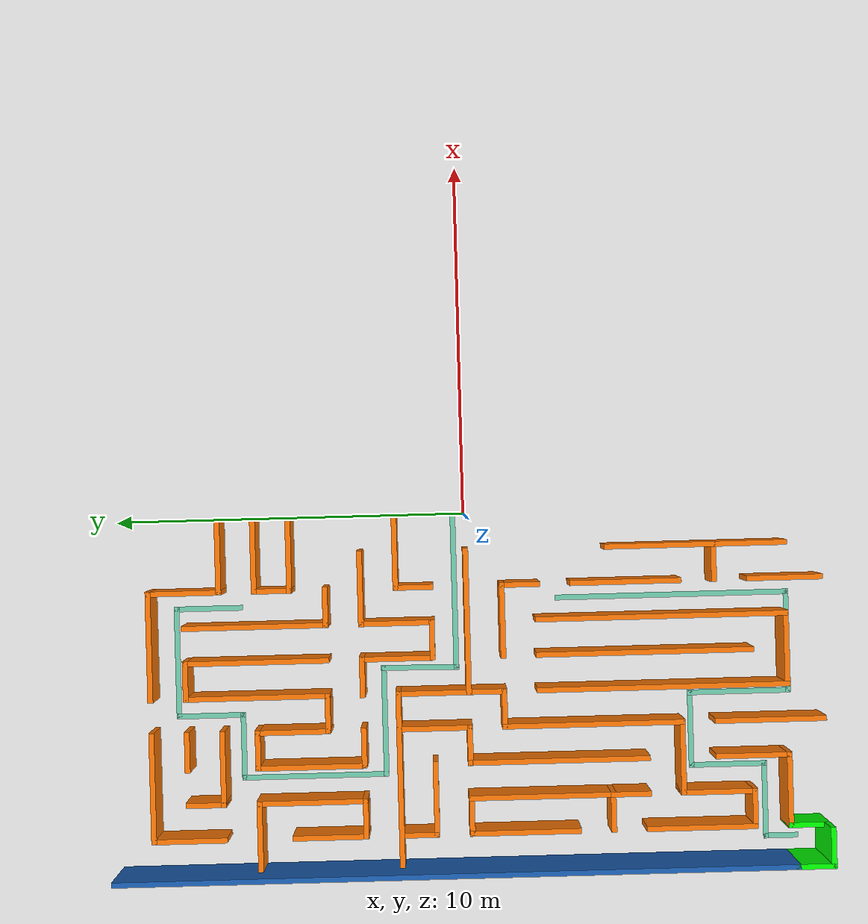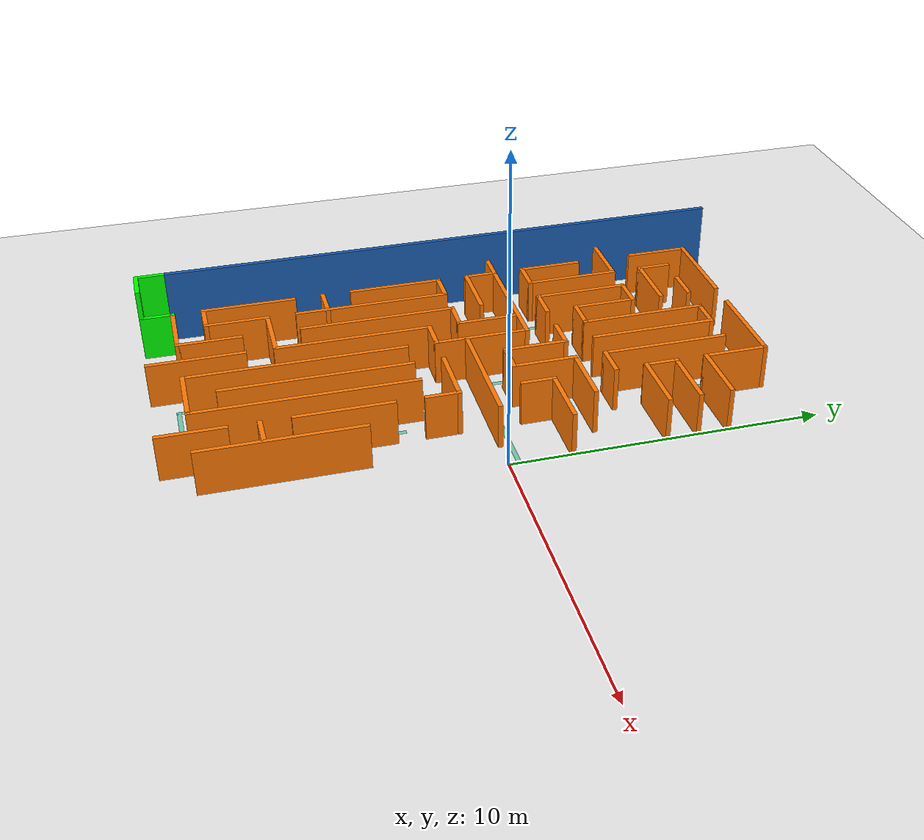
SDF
<sdf version="1.7">
 <world name="default">
  <model name="ground_plane">
   <static>1</static>
   <link name="link">
    <collision name="collision">
     <geometry><plane><normal>0 0 1</normal><size>100 100</size></plane></geometry>
     <surface><friction><ode><mu>100</mu><mu2>50</mu2></ode></friction></surface>
    </collision>
    <visual name="visual">
     <cast_shadows>0</cast_shadows>
     <geometry><plane><normal>0 0 1</normal><size>100 100</size></plane></geometry>
     <material>
      <script><uri>file://media/materials/scripts/gazebo.material</uri><name>Gazebo/White</name></script>
     </material>
    </visual>
   </link>
  </model>
  <model name="big_maze">
   <link name="Wall_10">
    <collision name="Wall_10_Collision">
     <geometry><box><size>19.15 0.15 2.5</size></box></geometry>
     <pose>0 0 1.25 0 -0 0</pose>
    </collision>
    <visual name="Wall_10_Visual">
     <pose>0 0 1.25 0 -0 0</pose>
     <geometry><box><size>19.15 0.15 2.5</size></box></geometry>
     <material>
      <script><uri>file://media/materials/scripts/gazebo.material</uri><name>Gazebo/Grey</name></script>
      <ambient>0.101961 0.372549 0.705882 1</ambient>
     </material>
     <meta><layer>0</layer></meta>
    </visual>
    <pose>-10 0.5 0 0 -0 1.5708</pose>
   </link>
   <link name="Wall_16">
    <collision name="Wall_16_Collision">
     <geometry><box><size>1.15 0.15 1.5</size></box></geometry>
     <pose>0 0 0.75 0 -0 0</pose>
    </collision>
    <visual name="Wall_16_Visual">
     <pose>0 0 0.75 0 -0 0</pose>
     <geometry><box><size>1.15 0.15 1.5</size></box></geometry>
     <material>
      <script><uri>file://media/materials/scripts/gazebo.material</uri><name>Gazebo/Grey</name></script>
      <ambient>0 1 0 1</ambient>
     </material>
     <meta><layer>0</layer></meta>
    </visual>
    <pose>-9 -9.5 0 0 -0 1.5708</pose>
   </link>
   <link name="Wall_166">
    <collision name="Wall_166_Collision">
     <geometry><box><size>3.15 0.15 1.5</size></box></geometry>
     <pose>0 0 0.75 0 -0 0</pose>
    </collision>
    <visual name="Wall_166_Visual">
     <pose>0 0 0.75 0 -0 0</pose>
     <geometry><box><size>3.15 0.15 1.5</size></box></geometry>
     <material>
      <script><uri>file://media/materials/scripts/gazebo.material</uri><name>Gazebo/Grey</name></script>
      <ambient>0.996078 0.47451 0.0196078 1</ambient>
     </material>
     <meta><layer>0</layer></meta>
    </visual>
    <pose>-7.5 9 0 0 -0 0</pose>
   </link>
   <link name="Wall_168">
    <collision name="Wall_168_Collision">
     <geometry><box><size>3.15 0.15 1.5</size></box></geometry>
     <pose>0 0 0.75 0 -0 0</pose>
    </collision>
    <visual name="Wall_168_Visual">
     <pose>0 0 0.75 0 -0 0</pose>
     <geometry><box><size>3.15 0.15 1.5</size></box></geometry>
     <material>
      <script><uri>file://media/materials/scripts/gazebo.material</uri><name>Gazebo/Grey</name></script>
      <ambient>0.996078 0.47451 0.0196078 1</ambient>
     </material>
     <meta><layer>0</layer></meta>
    </visual>
    <pose>-3.5 9 0 0 -0 0</pose>
   </link>
   <link name="Wall_176">
    <collision name="Wall_176_Collision">
     <geometry><box><size>1.15 0.15 1.5</size></box></geometry>
     <pose>0 0 0.75 0 -0 0</pose>
    </collision>
    <visual name="Wall_176_Visual">
     <pose>0 0 0.75 0 -0 0</pose>
     <geometry><box><size>1.15 0.15 1.5</size></box></geometry>
     <material>
      <script><uri>file://media/materials/scripts/gazebo.material</uri><name>Gazebo/Grey</name></script>
      <ambient>0.996078 0.47451 0.0196078 1</ambient>
     </material>
     <meta><layer>0</layer></meta>
    </visual>
    <pose>-6.5 8 0 0 -0 0</pose>
   </link>
   <link name="Wall_18">
    <collision name="Wall_18_Collision">
     <geometry><box><size>3.15 0.15 1.5</size></box></geometry>
     <pose>0 0 0.75 0 -0 0</pose>
    </collision>
    <visual name="Wall_18_Visual">
     <pose>0 0 0.75 0 -0 0</pose>
     <geometry><box><size>3.15 0.15 1.5</size></box></geometry>
     <material>
      <script><uri>file://media/materials/scripts/gazebo.material</uri><name>Gazebo/Grey</name></script>
      <ambient>0.996078 0.47451 0.0196078 1</ambient>
     </material>
     <meta><layer>0</layer></meta>
    </visual>
    <pose>-9 -6.5 0 0 -0 1.5708</pose>
   </link>
   <link name="Wall_182">
    <collision name="Wall_182_Collision">
     <geometry><box><size>1.15 0.15 1.5</size></box></geometry>
     <pose>0 0 0.75 0 -0 0</pose>
    </collision>
    <visual name="Wall_182_Visual">
     <pose>0 0 0.75 0 -0 0</pose>
     <geometry><box><size>1.15 0.15 1.5</size></box></geometry>
     <material>
      <script><uri>file://media/materials/scripts/gazebo.material</uri><name>Gazebo/Grey</name></script>
      <ambient>0.996078 0.47451 0.0196078 1</ambient>
     </material>
     <meta><layer>0</layer></meta>
    </visual>
    <pose>-4.5 8 0 0 -0 0</pose>
   </link>
   <link name="Wall_186">
    <collision name="Wall_186_Collision">
     <geometry><box><size>2.15 0.15 1.5</size></box></geometry>
     <pose>0 0 0.75 0 -0 0</pose>
    </collision>
    <visual name="Wall_186_Visual">
     <pose>0 0 0.75 0 -0 0</pose>
     <geometry><box><size>2.15 0.15 1.5</size></box></geometry>
     <material>
      <script><uri>file://media/materials/scripts/gazebo.material</uri><name>Gazebo/Grey</name></script>
      <ambient>0.996078 0.47451 0.0196078 1</ambient>
     </material>
     <meta><layer>0</layer></meta>
    </visual>
    <pose>-1 7 0 0 -0 0</pose>
   </link>
   <link name="Wall_190">
    <collision name="Wall_190_Collision">
     <geometry><box><size>2.15 0.15 1.5</size></box></geometry>
     <pose>0 0 0.75 0 -0 0</pose>
    </collision>
    <visual name="Wall_190_Visual">
     <pose>0 0 0.75 0 -0 0</pose>
     <geometry><box><size>2.15 0.15 1.5</size></box></geometry>
     <material>
      <script><uri>file://media/materials/scripts/gazebo.material</uri><name>Gazebo/Grey</name></script>
      <ambient>0.996078 0.47451 0.0196078 1</ambient>
     </material>
     <meta><layer>0</layer></meta>
    </visual>
    <pose>-7 7 0 0 -0 0</pose>
   </link>
   <link name="Wall_192">
    <collision name="Wall_192_Collision">
     <geometry><box><size>2.15 0.15 1.5</size></box></geometry>
     <pose>0 0 0.75 0 -0 0</pose>
    </collision>
    <visual name="Wall_192_Visual">
     <pose>0 0 0.75 0 -0 0</pose>
     <geometry><box><size>2.15 0.15 1.5</size></box></geometry>
     <material>
      <script><uri>file://media/materials/scripts/gazebo.material</uri><name>Gazebo/Grey</name></script>
      <ambient>0.996078 0.47451 0.0196078 1</ambient>
     </material>
     <meta><layer>0</layer></meta>
    </visual>
    <pose>-9 6 0 0 -0 0</pose>
   </link>
   <link name="Wall_196">
    <collision name="Wall_196_Collision">
     <geometry><box><size>2.15 0.15 1.5</size></box></geometry>
     <pose>0 0 0.75 0 -0 0</pose>
    </collision>
    <visual name="Wall_196_Visual">
     <pose>0 0 0.75 0 -0 0</pose>
     <geometry><box><size>2.15 0.15 1.5</size></box></geometry>
     <material>
      <script><uri>file://media/materials/scripts/gazebo.material</uri><name>Gazebo/Grey</name></script>
      <ambient>0.996078 0.47451 0.0196078 1</ambient>
     </material>
     <meta><layer>0</layer></meta>
    </visual>
    <pose>-1 6 0 0 -0 0</pose>
   </link>
   <link name="Wall_198">
    <collision name="Wall_198_Collision">
     <geometry><box><size>1.15 0.15 1.5</size></box></geometry>
     <pose>0 0 0.75 0 -0 0</pose>
    </collision>
    <visual name="Wall_198_Visual">
     <pose>0 0 0.75 0 -0 0</pose>
     <geometry><box><size>1.15 0.15 1.5</size></box></geometry>
     <material>
      <script><uri>file://media/materials/scripts/gazebo.material</uri><name>Gazebo/Grey</name></script>
      <ambient>0.996078 0.47451 0.0196078 1</ambient>
     </material>
     <meta><layer>0</layer></meta>
    </visual>
    <pose>-6.5 6 0 0 -0 0</pose>
   </link>
   <link name="Wall_20">
    <collision name="Wall_20_Collision">
     <geometry><box><size>3.15 0.15 1.5</size></box></geometry>
     <pose>0 0 0.75 0 -0 0</pose>
    </collision>
    <visual name="Wall_20_Visual">
     <pose>0 0 0.75 0 -0 0</pose>
     <geometry><box><size>3.15 0.15 1.5</size></box></geometry>
     <material>
      <script><uri>file://media/materials/scripts/gazebo.material</uri><name>Gazebo/Grey</name></script>
      <ambient>0.996078 0.47451 0.0196078 1</ambient>
     </material>
     <meta><layer>0</layer></meta>
    </visual>
    <pose>-9 -1.5 0 0 -0 1.5708</pose>
   </link>
   <link name="Wall_200">
    <collision name="Wall_200_Collision">
     <geometry><box><size>2.15 0.15 1.5</size></box></geometry>
     <pose>0 0 0.75 0 -0 0</pose>
    </collision>
    <visual name="Wall_200_Visual">
     <pose>0 0 0.75 0 -0 0</pose>
     <geometry><box><size>2.15 0.15 1.5</size></box></geometry>
     <material>
      <script><uri>file://media/materials/scripts/gazebo.material</uri><name>Gazebo/Grey</name></script>
      <ambient>0.996078 0.47451 0.0196078 1</ambient>
     </material>
     <meta><layer>0</layer></meta>
    </visual>
    <pose>-1 5 0 0 -0 0</pose>
   </link>
   <link name="Wall_204">
    <collision name="Wall_204_Collision">
     <geometry><box><size>1.15 0.15 1.5</size></box></geometry>
     <pose>0 0 0.75 0 -0 0</pose>
    </collision>
    <visual name="Wall_204_Visual">
     <pose>0 0 0.75 0 -0 0</pose>
     <geometry><box><size>1.15 0.15 1.5</size></box></geometry>
     <material>
      <script><uri>file://media/materials/scripts/gazebo.material</uri><name>Gazebo/Grey</name></script>
      <ambient>0.996078 0.47451 0.0196078 1</ambient>
     </material>
     <meta><layer>0</layer></meta>
    </visual>
    <pose>-5.5 4 0 0 -0 0</pose>
   </link>
   <link name="Wall_206">
    <collision name="Wall_206_Collision">
     <geometry><box><size>1.15 0.15 1.5</size></box></geometry>
     <pose>0 0 0.75 0 -0 0</pose>
    </collision>
    <visual name="Wall_206_Visual">
     <pose>0 0 0.75 0 -0 0</pose>
     <geometry><box><size>1.15 0.15 1.5</size></box></geometry>
     <material>
      <script><uri>file://media/materials/scripts/gazebo.material</uri><name>Gazebo/Grey</name></script>
      <ambient>0.996078 0.47451 0.0196078 1</ambient>
     </material>
     <meta><layer>0</layer></meta>
    </visual>
    <pose>-2.5 4 0 0 -0 0</pose>
   </link>
   <link name="Wall_210">
    <collision name="Wall_210_Collision">
     <geometry><box><size>1.15 0.15 1.5</size></box></geometry>
     <pose>0 0 0.75 0 -0 0</pose>
    </collision>
    <visual name="Wall_210_Visual">
     <pose>0 0 0.75 0 -0 0</pose>
     <geometry><box><size>1.15 0.15 1.5</size></box></geometry>
     <material>
      <script><uri>file://media/materials/scripts/gazebo.material</uri><name>Gazebo/Grey</name></script>
      <ambient>0.996078 0.47451 0.0196078 1</ambient>
     </material>
     <meta><layer>0</layer></meta>
    </visual>
    <pose>-8.5 3 0 0 -0 0</pose>
   </link>
   <link name="Wall_212">
    <collision name="Wall_212_Collision">
     <geometry><box><size>1.15 0.15 1.5</size></box></geometry>
     <pose>0 0 0.75 0 -0 0</pose>
    </collision>
    <visual name="Wall_212_Visual">
     <pose>0 0 0.75 0 -0 0</pose>
     <geometry><box><size>1.15 0.15 1.5</size></box></geometry>
     <material>
      <script><uri>file://media/materials/scripts/gazebo.material</uri><name>Gazebo/Grey</name></script>
      <ambient>0.996078 0.47451 0.0196078 1</ambient>
     </material>
     <meta><layer>0</layer></meta>
    </visual>
    <pose>-6.5 3 0 0 -0 0</pose>
   </link>
   <link name="Wall_216">
    <collision name="Wall_216_Collision">
     <geometry><box><size>2.15 0.15 1.5</size></box></geometry>
     <pose>0 0 0.75 0 -0 0</pose>
    </collision>
    <visual name="Wall_216_Visual">
     <pose>0 0 0.75 0 -0 0</pose>
     <geometry><box><size>2.15 0.15 1.5</size></box></geometry>
     <material>
      <script><uri>file://media/materials/scripts/gazebo.material</uri><name>Gazebo/Grey</name></script>
      <ambient>0.996078 0.47451 0.0196078 1</ambient>
     </material>
     <meta><layer>0</layer></meta>
    </visual>
    <pose>-2 3 0 0 -0 0</pose>
   </link>
   <link name="Wall_218">
    <collision name="Wall_218_Collision">
     <geometry><box><size>1.15 0.15 1.5</size></box></geometry>
     <pose>0 0 0.75 0 -0 0</pose>
    </collision>
    <visual name="Wall_218_Visual">
     <pose>0 0 0.75 0 -0 0</pose>
     <geometry><box><size>1.15 0.15 1.5</size></box></geometry>
     <material>
      <script><uri>file://media/materials/scripts/gazebo.material</uri><name>Gazebo/Grey</name></script>
      <ambient>0.996078 0.47451 0.0196078 1</ambient>
     </material>
     <meta><layer>0</layer></meta>
    </visual>
    <pose>-4.5 3 0 0 -0 0</pose>
   </link>
   <link name="Wall_22">
    <collision name="Wall_22_Collision">
     <geometry><box><size>1.15 0.15 1.5</size></box></geometry>
     <pose>0 0 0.75 0 -0 0</pose>
    </collision>
    <visual name="Wall_22_Visual">
     <pose>0 0 0.75 0 -0 0</pose>
     <geometry><box><size>1.15 0.15 1.5</size></box></geometry>
     <material>
      <script><uri>file://media/materials/scripts/gazebo.material</uri><name>Gazebo/Grey</name></script>
      <ambient>0.996078 0.47451 0.0196078 1</ambient>
     </material>
     <meta><layer>0</layer></meta>
    </visual>
    <pose>-9 1.5 0 0 -0 1.5708</pose>
   </link>
   <link name="Wall_220">
    <collision name="Wall_220_Collision">
     <geometry><box><size>5.15 0.15 1.5</size></box></geometry>
     <pose>0 0 0.75 0 -0 0</pose>
    </collision>
    <visual name="Wall_220_Visual">
     <pose>0 0 0.75 0 -0 0</pose>
     <geometry><box><size>5.15 0.15 1.5</size></box></geometry>
     <material>
      <script><uri>file://media/materials/scripts/gazebo.material</uri><name>Gazebo/Grey</name></script>
      <ambient>0.996078 0.47451 0.0196078 1</ambient>
     </material>
     <meta><layer>0</layer></meta>
    </visual>
    <pose>-7.5 2 0 0 -0 0</pose>
   </link>
   <link name="Wall_222">
    <collision name="Wall_222_Collision">
     <geometry><box><size>2.15 0.15 1.5</size></box></geometry>
     <pose>0 0 0.75 0 -0 0</pose>
    </collision>
    <visual name="Wall_222_Visual">
     <pose>0 0 0.75 0 -0 0</pose>
     <geometry><box><size>2.15 0.15 1.5</size></box></geometry>
     <material>
      <script><uri>file://media/materials/scripts/gazebo.material</uri><name>Gazebo/Grey</name></script>
      <ambient>0.996078 0.47451 0.0196078 1</ambient>
     </material>
     <meta><layer>0</layer></meta>
    </visual>
    <pose>-1 2 0 0 -0 0</pose>
   </link>
   <link name="Wall_226">
    <collision name="Wall_226_Collision">
     <geometry><box><size>2.15 0.15 1.5</size></box></geometry>
     <pose>0 0 0.75 0 -0 0</pose>
    </collision>
    <visual name="Wall_226_Visual">
     <pose>0 0 0.75 0 -0 0</pose>
     <geometry><box><size>2.15 0.15 1.5</size></box></geometry>
     <material>
      <script><uri>file://media/materials/scripts/gazebo.material</uri><name>Gazebo/Grey</name></script>
      <ambient>0.996078 0.47451 0.0196078 1</ambient>
     </material>
     <meta><layer>0</layer></meta>
    </visual>
    <pose>-8 1 0 0 -0 0</pose>
   </link>
   <link name="Wall_228">
    <collision name="Wall_228_Collision">
     <geometry><box><size>1.15 0.15 1.5</size></box></geometry>
     <pose>0 0 0.75 0 -0 0</pose>
    </collision>
    <visual name="Wall_228_Visual">
     <pose>0 0 0.75 0 -0 0</pose>
     <geometry><box><size>1.15 0.15 1.5</size></box></geometry>
     <material>
      <script><uri>file://media/materials/scripts/gazebo.material</uri><name>Gazebo/Grey</name></script>
      <ambient>0.996078 0.47451 0.0196078 1</ambient>
     </material>
     <meta><layer>0</layer></meta>
    </visual>
    <pose>-3.5 1 0 0 -0 0</pose>
   </link>
   <link name="Wall_234">
    <collision name="Wall_234_Collision">
     <geometry><box><size>1.15 0.15 1.5</size></box></geometry>
     <pose>0 0 0.75 0 -0 0</pose>
    </collision>
    <visual name="Wall_234_Visual">
     <pose>0 0 0.75 0 -0 0</pose>
     <geometry><box><size>1.15 0.15 1.5</size></box></geometry>
     <material>
      <script><uri>file://media/materials/scripts/gazebo.material</uri><name>Gazebo/Grey</name></script>
      <ambient>0.996078 0.47451 0.0196078 1</ambient>
     </material>
     <meta><layer>0</layer></meta>
    </visual>
    <pose>-8.5 0 0 0 -0 0</pose>
   </link>
   <link name="Wall_236">
    <collision name="Wall_236_Collision">
     <geometry><box><size>1.15 0.15 1.5</size></box></geometry>
     <pose>0 0 0.75 0 -0 0</pose>
    </collision>
    <visual name="Wall_236_Visual">
     <pose>0 0 0.75 0 -0 0</pose>
     <geometry><box><size>1.15 0.15 1.5</size></box></geometry>
     <material>
      <script><uri>file://media/materials/scripts/gazebo.material</uri><name>Gazebo/Grey</name></script>
      <ambient>0.996078 0.47451 0.0196078 1</ambient>
     </material>
     <meta><layer>0</layer></meta>
    </visual>
    <pose>-6.5 0 0 0 -0 0</pose>
   </link>
   <link name="Wall_238">
    <collision name="Wall_238_Collision">
     <geometry><box><size>4.15 0.15 1.5</size></box></geometry>
     <pose>0 0 0.75 0 -0 0</pose>
    </collision>
    <visual name="Wall_238_Visual">
     <pose>0 0 0.75 0 -0 0</pose>
     <geometry><box><size>4.15 0.15 1.5</size></box></geometry>
     <material>
      <script><uri>file://media/materials/scripts/gazebo.material</uri><name>Gazebo/Grey</name></script>
      <ambient>0.996078 0.47451 0.0196078 1</ambient>
     </material>
     <meta><layer>0</layer></meta>
    </visual>
    <pose>-3 0 0 0 -0 0</pose>
   </link>
   <link name="Wall_24">
    <collision name="Wall_24_Collision">
     <geometry><box><size>2.15 0.15 1.5</size></box></geometry>
     <pose>0 0 0.75 0 -0 0</pose>
    </collision>
    <visual name="Wall_24_Visual">
     <pose>0 0 0.75 0 -0 0</pose>
     <geometry><box><size>2.15 0.15 1.5</size></box></geometry>
     <material>
      <script><uri>file://media/materials/scripts/gazebo.material</uri><name>Gazebo/Grey</name></script>
      <ambient>0.996078 0.47451 0.0196078 1</ambient>
     </material>
     <meta><layer>0</layer></meta>
    </visual>
    <pose>-9 4 0 0 -0 1.5708</pose>
   </link>
   <link name="Wall_242">
    <collision name="Wall_242_Collision">
     <geometry><box><size>1.15 0.15 1.5</size></box></geometry>
     <pose>0 0 0.75 0 -0 0</pose>
    </collision>
    <visual name="Wall_242_Visual">
     <pose>0 0 0.75 0 -0 0</pose>
     <geometry><box><size>1.15 0.15 1.5</size></box></geometry>
     <material>
      <script><uri>file://media/materials/scripts/gazebo.material</uri><name>Gazebo/Grey</name></script>
      <ambient>0.996078 0.47451 0.0196078 1</ambient>
     </material>
     <meta><layer>0</layer></meta>
    </visual>
    <pose>-5.5 -1 0 0 -0 0</pose>
   </link>
   <link name="Wall_244">
    <collision name="Wall_244_Collision">
     <geometry><box><size>2.15 0.15 1.5</size></box></geometry>
     <pose>0 0 0.75 0 -0 0</pose>
    </collision>
    <visual name="Wall_244_Visual">
     <pose>0 0 0.75 0 -0 0</pose>
     <geometry><box><size>2.15 0.15 1.5</size></box></geometry>
     <material>
      <script><uri>file://media/materials/scripts/gazebo.material</uri><name>Gazebo/Grey</name></script>
      <ambient>0.996078 0.47451 0.0196078 1</ambient>
     </material>
     <meta><layer>0</layer></meta>
    </visual>
    <pose>-3 -1 0 0 -0 0</pose>
   </link>
   <link name="Wall_256">
    <collision name="Wall_256_Collision">
     <geometry><box><size>1.15 0.15 1.5</size></box></geometry>
     <pose>0 0 0.75 0 -0 0</pose>
    </collision>
    <visual name="Wall_256_Visual">
     <pose>0 0 0.75 0 -0 0</pose>
     <geometry><box><size>1.15 0.15 1.5</size></box></geometry>
     <material>
      <script><uri>file://media/materials/scripts/gazebo.material</uri><name>Gazebo/Grey</name></script>
      <ambient>0.996078 0.47451 0.0196078 1</ambient>
     </material>
     <meta><layer>0</layer></meta>
    </visual>
    <pose>-8.5 -4 0 0 -0 0</pose>
   </link>
   <link name="Wall_26">
    <collision name="Wall_26_Collision">
     <geometry><box><size>2.15 0.15 1.5</size></box></geometry>
     <pose>0 0 0.75 0 -0 0</pose>
    </collision>
    <visual name="Wall_26_Visual">
     <pose>0 0 0.75 0 -0 0</pose>
     <geometry><box><size>2.15 0.15 1.5</size></box></geometry>
     <material>
      <script><uri>file://media/materials/scripts/gazebo.material</uri><name>Gazebo/Grey</name></script>
      <ambient>0.996078 0.47451 0.0196078 1</ambient>
     </material>
     <meta><layer>0</layer></meta>
    </visual>
    <pose>-9 8 0 0 -0 1.5708</pose>
   </link>
   <link name="Wall_260">
    <collision name="Wall_260_Collision">
     <geometry><box><size>2.15 0.15 1.5</size></box></geometry>
     <pose>0 0 0.75 0 -0 0</pose>
    </collision>
    <visual name="Wall_260_Visual">
     <pose>0 0 0.75 0 -0 0</pose>
     <geometry><box><size>2.15 0.15 1.5</size></box></geometry>
     <material>
      <script><uri>file://media/materials/scripts/gazebo.material</uri><name>Gazebo/Grey</name></script>
      <ambient>0.996078 0.47451 0.0196078 1</ambient>
     </material>
     <meta><layer>0</layer></meta>
    </visual>
    <pose>-7 -6 0 0 -0 0</pose>
   </link>
   <link name="Wall_265">
    <collision name="Wall_265_Collision">
     <geometry><box><size>1.15 0.15 1.5</size></box></geometry>
     <pose>0 0 0.75 0 -0 0</pose>
    </collision>
    <visual name="Wall_265_Visual">
     <pose>0 0 0.75 0 -0 0</pose>
     <geometry><box><size>1.15 0.15 1.5</size></box></geometry>
     <material>
      <script><uri>file://media/materials/scripts/gazebo.material</uri><name>Gazebo/Grey</name></script>
      <ambient>0.996078 0.47451 0.0196078 1</ambient>
     </material>
     <meta><layer>0</layer></meta>
    </visual>
    <pose>-1.5 -7 0 0 -0 0</pose>
   </link>
   <link name="Wall_267">
    <collision name="Wall_267_Collision">
     <geometry><box><size>1.15 0.15 1.5</size></box></geometry>
     <pose>0 0 0.75 0 -0 0</pose>
    </collision>
    <visual name="Wall_267_Visual">
     <pose>0 0 0.75 0 -0 0</pose>
     <geometry><box><size>1.15 0.15 1.5</size></box></geometry>
     <material>
      <script><uri>file://media/materials/scripts/gazebo.material</uri><name>Gazebo/Grey</name></script>
      <ambient>0.996078 0.47451 0.0196078 1</ambient>
     </material>
     <meta><layer>0</layer></meta>
    </visual>
    <pose>-8.5 -8 0 0 -0 0</pose>
   </link>
   <link name="Wall_271">
    <collision name="Wall_271_Collision">
     <geometry><box><size>2.15 0.15 1.5</size></box></geometry>
     <pose>0 0 0.75 0 -0 0</pose>
    </collision>
    <visual name="Wall_271_Visual">
     <pose>0 0 0.75 0 -0 0</pose>
     <geometry><box><size>2.15 0.15 1.5</size></box></geometry>
     <material>
      <script><uri>file://media/materials/scripts/gazebo.material</uri><name>Gazebo/Grey</name></script>
      <ambient>0.996078 0.47451 0.0196078 1</ambient>
     </material>
     <meta><layer>0</layer></meta>
    </visual>
    <pose>-8 -9 0 0 -0 0</pose>
   </link>
   <link name="Wall_277">
    <collision name="Wall_277_Collision">
     <geometry><box><size>2.15 0.15 1.5</size></box></geometry>
     <pose>0 0 0.75 0 -0 0</pose>
    </collision>
    <visual name="Wall_277_Visual">
     <pose>0 0 0.75 0 -0 0</pose>
     <geometry><box><size>2.15 0.15 1.5</size></box></geometry>
     <material>
      <script><uri>file://media/materials/scripts/gazebo.material</uri><name>Gazebo/Grey</name></script>
      <ambient>0.996078 0.47451 0.0196078 1</ambient>
     </material>
     <meta><layer>0</layer></meta>
    </visual>
    <pose>-4 -9 0 0 -0 0</pose>
   </link>
   <link name="Wall_28">
    <collision name="Wall_28_Collision">
     <geometry><box><size>1.15 0.15 1.5</size></box></geometry>
     <pose>0 0 0.75 0 -0 0</pose>
    </collision>
    <visual name="Wall_28_Visual">
     <pose>0 0 0.75 0 -0 0</pose>
     <geometry><box><size>1.15 0.15 1.5</size></box></geometry>
     <material>
      <script><uri>file://media/materials/scripts/gazebo.material</uri><name>Gazebo/Grey</name></script>
      <ambient>0.996078 0.47451 0.0196078 1</ambient>
     </material>
     <meta><layer>0</layer></meta>
    </visual>
    <pose>-8 7.5 0 0 -0 -1.5708</pose>
   </link>
   <link name="Wall_283">
    <collision name="Wall_283_Collision"><geometry><box><size>4.5002 0.15 0</size></box></geometry></collision>
    <visual name="Wall_283_Visual">
     <geometry><box><size>4.5002 0.15 0</size></box></geometry>
     <material>
      <script><uri>file://media/materials/scripts/gazebo.material</uri><name>Gazebo/Grey</name></script>
      <ambient>0.435294 0.796078 0.67451 1</ambient>
     </material>
     <meta><layer>0</layer></meta>
    </visual>
    <pose>-2.2315 0.326 0 0 -0 3.14159</pose>
   </link>
   <link name="Wall_284">
    <collision name="Wall_284_Collision"><geometry><box><size>2.25 0.15 0</size></box></geometry></collision>
    <visual name="Wall_284_Visual">
     <geometry><box><size>2.25 0.15 0</size></box></geometry>
     <material>
      <script><uri>file://media/materials/scripts/gazebo.material</uri><name>Gazebo/Grey</name></script>
      <ambient>0.435294 0.796078 0.67451 1</ambient>
     </material>
     <meta><layer>0</layer></meta>
    </visual>
    <pose>-4.3915 1.376 0 0 -0 1.55604</pose>
   </link>
   <link name="Wall_288">
    <collision name="Wall_288_Collision"><geometry><box><size>3.2192 0.15 0</size></box></geometry></collision>
    <visual name="Wall_288_Visual">
     <geometry><box><size>3.2192 0.15 0</size></box></geometry>
     <material>
      <script><uri>file://media/materials/scripts/gazebo.material</uri><name>Gazebo/Grey</name></script>
      <ambient>0.435294 0.796078 0.67451 1</ambient>
     </material>
     <meta><layer>0</layer></meta>
    </visual>
    <pose>-5.9105 2.426 0 0 -0 3.14159</pose>
   </link>
   <link name="Wall_289">
    <collision name="Wall_289_Collision"><geometry><box><size>4.25 0.15 0</size></box></geometry></collision>
    <visual name="Wall_289_Visual">
     <geometry><box><size>4.25 0.15 0</size></box></geometry>
     <material>
      <script><uri>file://media/materials/scripts/gazebo.material</uri><name>Gazebo/Grey</name></script>
      <ambient>0.435294 0.796078 0.67451 1</ambient>
     </material>
     <meta><layer>0</layer></meta>
    </visual>
    <pose>-7.445 4.476 0 0 -0 1.5708</pose>
   </link>
   <link name="Wall_290">
    <collision name="Wall_290_Collision"><geometry><box><size>1.969 0.15 0</size></box></geometry></collision>
    <visual name="Wall_290_Visual">
     <geometry><box><size>1.969 0.15 0</size></box></geometry>
     <material>
      <script><uri>file://media/materials/scripts/gazebo.material</uri><name>Gazebo/Grey</name></script>
      <ambient>0.435294 0.796078 0.67451 1</ambient>
     </material>
     <meta><layer>0</layer></meta>
    </visual>
    <pose>-6.5355 6.526 0 0 -0 0</pose>
   </link>
   <link name="Wall_294">
    <collision name="Wall_294_Collision"><geometry><box><size>2 0.15 0</size></box></geometry></collision>
    <visual name="Wall_294_Visual">
     <geometry><box><size>2 0.15 0</size></box></geometry>
     <material>
      <script><uri>file://media/materials/scripts/gazebo.material</uri><name>Gazebo/Grey</name></script>
      <ambient>0.435294 0.796078 0.67451 1</ambient>
     </material>
     <meta><layer>0</layer></meta>
    </visual>
    <pose>-5.626 7.451 0 0 -0 1.5708</pose>
   </link>
   <link name="Wall_295">
    <collision name="Wall_295_Collision"><geometry><box><size>3.25 0.15 0</size></box></geometry></collision>
    <visual name="Wall_295_Visual">
     <geometry><box><size>3.25 0.15 0</size></box></geometry>
     <material>
      <script><uri>file://media/materials/scripts/gazebo.material</uri><name>Gazebo/Grey</name></script>
      <ambient>0.435294 0.796078 0.67451 1</ambient>
     </material>
     <meta><layer>0</layer></meta>
    </visual>
    <pose>-4.076 8.376 0 0 -0 0</pose>
   </link>
   <link name="Wall_296">
    <collision name="Wall_296_Collision"><geometry><box><size>2 0.15 0</size></box></geometry></collision>
    <visual name="Wall_296_Visual">
     <geometry><box><size>2 0.15 0</size></box></geometry>
     <material>
      <script><uri>file://media/materials/scripts/gazebo.material</uri><name>Gazebo/Grey</name></script>
      <ambient>0.435294 0.796078 0.67451 1</ambient>
     </material>
     <meta><layer>0</layer></meta>
    </visual>
    <pose>-2.526 7.451 0 0 -0 -1.5708</pose>
   </link>
   <link name="Wall_30">
    <collision name="Wall_30_Collision">
     <geometry><box><size>3.15 0.15 1.5</size></box></geometry>
     <pose>0 0 0.75 0 -0 0</pose>
    </collision>
    <visual name="Wall_30_Visual">
     <pose>0 0 0.75 0 -0 0</pose>
     <geometry><box><size>3.15 0.15 1.5</size></box></geometry>
     <material>
      <script><uri>file://media/materials/scripts/gazebo.material</uri><name>Gazebo/Grey</name></script>
      <ambient>0.996078 0.47451 0.0196078 1</ambient>
     </material>
     <meta><layer>0</layer></meta>
    </visual>
    <pose>-8 4.5 0 0 -0 -1.5708</pose>
   </link>
   <link name="Wall_309">
    <collision name="Wall_309_Collision"><geometry><box><size>6.75 0.15 0</size></box></geometry></collision>
    <visual name="Wall_309_Visual">
     <geometry><box><size>6.75 0.15 0</size></box></geometry>
     <material>
      <script><uri>file://media/materials/scripts/gazebo.material</uri><name>Gazebo/Grey</name></script>
      <ambient>0.435294 0.796078 0.67451 1</ambient>
     </material>
     <meta><layer>0</layer></meta>
    </visual>
    <pose>-2.476 -5.95 0 0 -0 -1.5708</pose>
   </link>
   <link name="Wall_310">
    <collision name="Wall_310_Collision"><geometry><box><size>3 0.15 0</size></box></geometry></collision>
    <visual name="Wall_310_Visual">
     <geometry><box><size>3 0.15 0</size></box></geometry>
     <material>
      <script><uri>file://media/materials/scripts/gazebo.material</uri><name>Gazebo/Grey</name></script>
      <ambient>0.435294 0.796078 0.67451 1</ambient>
     </material>
     <meta><layer>0</layer></meta>
    </visual>
    <pose>-3.901 -9.25 0 0 -0 3.14159</pose>
   </link>
   <link name="Wall_311">
    <collision name="Wall_311_Collision"><geometry><box><size>3.00016 0.15 0</size></box></geometry></collision>
    <visual name="Wall_311_Visual">
     <geometry><box><size>3.00016 0.15 0</size></box></geometry>
     <material>
      <script><uri>file://media/materials/scripts/gazebo.material</uri><name>Gazebo/Grey</name></script>
      <ambient>0.435294 0.796078 0.67451 1</ambient>
     </material>
     <meta><layer>0</layer></meta>
    </visual>
    <pose>-5.326 -7.825 0 0 -0 1.5708</pose>
   </link>
   <link name="Wall_312">
    <collision name="Wall_312_Collision"><geometry><box><size>2.25 0.15 0</size></box></geometry></collision>
    <visual name="Wall_312_Visual">
     <geometry><box><size>2.25 0.15 0</size></box></geometry>
     <material>
      <script><uri>file://media/materials/scripts/gazebo.material</uri><name>Gazebo/Grey</name></script>
      <ambient>0.435294 0.796078 0.67451 1</ambient>
     </material>
     <meta><layer>0</layer></meta>
    </visual>
    <pose>-6.376 -6.4 0 0 -0 3.14159</pose>
   </link>
   <link name="Wall_313">
    <collision name="Wall_313_Collision"><geometry><box><size>2.25022 0.15 0</size></box></geometry></collision>
    <visual name="Wall_313_Visual">
     <geometry><box><size>2.25022 0.15 0</size></box></geometry>
     <material>
      <script><uri>file://media/materials/scripts/gazebo.material</uri><name>Gazebo/Grey</name></script>
      <ambient>0.435294 0.796078 0.67451 1</ambient>
     </material>
     <meta><layer>0</layer></meta>
    </visual>
    <pose>-7.426 -7.45 0 0 -0 -1.5708</pose>
   </link>
   <link name="Wall_314">
    <collision name="Wall_314_Collision"><geometry><box><size>2.25 0.15 0</size></box></geometry></collision>
    <visual name="Wall_314_Visual">
     <geometry><box><size>2.25 0.15 0</size></box></geometry>
     <material>
      <script><uri>file://media/materials/scripts/gazebo.material</uri><name>Gazebo/Grey</name></script>
      <ambient>0.435294 0.796078 0.67451 1</ambient>
     </material>
     <meta><layer>0</layer></meta>
    </visual>
    <pose>-8.476 -8.5 0 0 -0 3.14159</pose>
   </link>
   <link name="Wall_315">
    <collision name="Wall_315_Collision"><geometry><box><size>1 0.15 0</size></box></geometry></collision>
    <visual name="Wall_315_Visual">
     <geometry><box><size>1 0.15 0</size></box></geometry>
     <material>
      <script><uri>file://media/materials/scripts/gazebo.material</uri><name>Gazebo/Grey</name></script>
      <ambient>0.435294 0.796078 0.67451 1</ambient>
     </material>
     <meta><layer>0</layer></meta>
    </visual>
    <pose>-9.526 -8.925 0 0 -0 -1.5708</pose>
   </link>
   <link name="Wall_317">
    <collision name="Wall_317_Collision">
     <geometry><box><size>1.15 0.15 2.5</size></box></geometry>
     <pose>0 0 1.25 0 -0 0</pose>
    </collision>
    <visual name="Wall_317_Visual">
     <pose>0 0 1.25 0 -0 0</pose>
     <geometry><box><size>1.15 0.15 2.5</size></box></geometry>
     <material>
      <script><uri>file://media/materials/scripts/gazebo.material</uri><name>Gazebo/Grey</name></script>
      <ambient>0 1 0 1</ambient>
     </material>
     <meta><layer>0</layer></meta>
    </visual>
    <pose>-10 -9.5 0 0 -0 -1.5708</pose>
   </link>
   <link name="Wall_319">
    <collision name="Wall_319_Collision">
     <geometry><box><size>1.15 0.15 2.5</size></box></geometry>
     <pose>0 0 1.25 0 -0 0</pose>
    </collision>
    <visual name="Wall_319_Visual">
     <pose>0 0 1.25 0 -0 0</pose>
     <geometry><box><size>1.15 0.15 2.5</size></box></geometry>
     <material>
      <script><uri>file://media/materials/scripts/gazebo.material</uri><name>Gazebo/Grey</name></script>
      <ambient>0 1 0 1</ambient>
     </material>
     <meta><layer>0</layer></meta>
    </visual>
    <pose>-9.5 -10 0 0 -0 3.14159</pose>
   </link>
   <link name="Wall_32">
    <collision name="Wall_32_Collision">
     <geometry><box><size>5.15 0.15 1.5</size></box></geometry>
     <pose>0 0 0.75 0 -0 0</pose>
    </collision>
    <visual name="Wall_32_Visual">
     <pose>0 0 0.75 0 -0 0</pose>
     <geometry><box><size>5.15 0.15 1.5</size></box></geometry>
     <material>
      <script><uri>file://media/materials/scripts/gazebo.material</uri><name>Gazebo/Grey</name></script>
      <ambient>0.996078 0.47451 0.0196078 1</ambient>
     </material>
     <meta><layer>0</layer></meta>
    </visual>
    <pose>-8 -2.5 0 0 -0 -1.5708</pose>
   </link>
   <link name="Wall_34">
    <collision name="Wall_34_Collision">
     <geometry><box><size>2.15 0.15 1.5</size></box></geometry>
     <pose>0 0 0.75 0 -0 0</pose>
    </collision>
    <visual name="Wall_34_Visual">
     <pose>0 0 0.75 0 -0 0</pose>
     <geometry><box><size>2.15 0.15 1.5</size></box></geometry>
     <material>
      <script><uri>file://media/materials/scripts/gazebo.material</uri><name>Gazebo/Grey</name></script>
      <ambient>0.996078 0.47451 0.0196078 1</ambient>
     </material>
     <meta><layer>0</layer></meta>
    </visual>
    <pose>-8 -7 0 0 -0 -1.5708</pose>
   </link>
   <link name="Wall_36">
    <collision name="Wall_36_Collision">
     <geometry><box><size>3.15 0.15 1.5</size></box></geometry>
     <pose>0 0 0.75 0 -0 0</pose>
    </collision>
    <visual name="Wall_36_Visual">
     <pose>0 0 0.75 0 -0 0</pose>
     <geometry><box><size>3.15 0.15 1.5</size></box></geometry>
     <material>
      <script><uri>file://media/materials/scripts/gazebo.material</uri><name>Gazebo/Grey</name></script>
      <ambient>0.996078 0.47451 0.0196078 1</ambient>
     </material>
     <meta><layer>0</layer></meta>
    </visual>
    <pose>-7 4.5 0 0 -0 -1.5708</pose>
   </link>
   <link name="Wall_38">
    <collision name="Wall_38_Collision">
     <geometry><box><size>5.15 0.15 1.5</size></box></geometry>
     <pose>0 0 0.75 0 -0 0</pose>
    </collision>
    <visual name="Wall_38_Visual">
     <pose>0 0 0.75 0 -0 0</pose>
     <geometry><box><size>5.15 0.15 1.5</size></box></geometry>
     <material>
      <script><uri>file://media/materials/scripts/gazebo.material</uri><name>Gazebo/Grey</name></script>
      <ambient>0.996078 0.47451 0.0196078 1</ambient>
     </material>
     <meta><layer>0</layer></meta>
    </visual>
    <pose>-7 -2.5 0 0 -0 -1.5708</pose>
   </link>
   <link name="Wall_40">
    <collision name="Wall_40_Collision">
     <geometry><box><size>2.15 0.15 1.5</size></box></geometry>
     <pose>0 0 0.75 0 -0 0</pose>
    </collision>
    <visual name="Wall_40_Visual">
     <pose>0 0 0.75 0 -0 0</pose>
     <geometry><box><size>2.15 0.15 1.5</size></box></geometry>
     <material>
      <script><uri>file://media/materials/scripts/gazebo.material</uri><name>Gazebo/Grey</name></script>
      <ambient>0.996078 0.47451 0.0196078 1</ambient>
     </material>
     <meta><layer>0</layer></meta>
    </visual>
    <pose>-7 -8 0 0 -0 -1.5708</pose>
   </link>
   <link name="Wall_42">
    <collision name="Wall_42_Collision">
     <geometry><box><size>3.15 0.15 1.5</size></box></geometry>
     <pose>0 0 0.75 0 -0 0</pose>
    </collision>
    <visual name="Wall_42_Visual">
     <pose>0 0 0.75 0 -0 0</pose>
     <geometry><box><size>3.15 0.15 1.5</size></box></geometry>
     <material>
      <script><uri>file://media/materials/scripts/gazebo.material</uri><name>Gazebo/Grey</name></script>
      <ambient>0.996078 0.47451 0.0196078 1</ambient>
     </material>
     <meta><layer>0</layer></meta>
    </visual>
    <pose>-6 -8.5 0 0 -0 1.5708</pose>
   </link>
   <link name="Wall_44">
    <collision name="Wall_44_Collision">
     <geometry><box><size>5.15 0.15 1.5</size></box></geometry>
     <pose>0 0 0.75 0 -0 0</pose>
    </collision>
    <visual name="Wall_44_Visual">
     <pose>0 0 0.75 0 -0 0</pose>
     <geometry><box><size>5.15 0.15 1.5</size></box></geometry>
     <material>
      <script><uri>file://media/materials/scripts/gazebo.material</uri><name>Gazebo/Grey</name></script>
      <ambient>0.996078 0.47451 0.0196078 1</ambient>
     </material>
     <meta><layer>0</layer></meta>
    </visual>
    <pose>-6 -3.5 0 0 -0 1.5708</pose>
   </link>
   <link name="Wall_46">
    <collision name="Wall_46_Collision">
     <geometry><box><size>2.15 0.15 1.5</size></box></geometry>
     <pose>0 0 0.75 0 -0 0</pose>
    </collision>
    <visual name="Wall_46_Visual">
     <pose>0 0 0.75 0 -0 0</pose>
     <geometry><box><size>2.15 0.15 1.5</size></box></geometry>
     <material>
      <script><uri>file://media/materials/scripts/gazebo.material</uri><name>Gazebo/Grey</name></script>
      <ambient>0.996078 0.47451 0.0196078 1</ambient>
     </material>
     <meta><layer>0</layer></meta>
    </visual>
    <pose>-6 1 0 0 -0 1.5708</pose>
   </link>
   <link name="Wall_49">
    <collision name="Wall_49_Collision">
     <geometry><box><size>7.15 0.15 1.5</size></box></geometry>
     <pose>0 0 0.75 0 -0 0</pose>
    </collision>
    <visual name="Wall_49_Visual">
     <pose>0 0 0.75 0 -0 0</pose>
     <geometry><box><size>7.15 0.15 1.5</size></box></geometry>
     <material>
      <script><uri>file://media/materials/scripts/gazebo.material</uri><name>Gazebo/Grey</name></script>
      <ambient>0.996078 0.47451 0.0196078 1</ambient>
     </material>
     <meta><layer>0</layer></meta>
    </visual>
    <pose>-5 -5.5 0 0 -0 1.5708</pose>
   </link>
   <link name="Wall_51">
    <collision name="Wall_51_Collision">
     <geometry><box><size>2.15 0.15 1.5</size></box></geometry>
     <pose>0 0 0.75 0 -0 0</pose>
    </collision>
    <visual name="Wall_51_Visual">
     <pose>0 0 0.75 0 -0 0</pose>
     <geometry><box><size>2.15 0.15 1.5</size></box></geometry>
     <material>
      <script><uri>file://media/materials/scripts/gazebo.material</uri><name>Gazebo/Grey</name></script>
      <ambient>0.996078 0.47451 0.0196078 1</ambient>
     </material>
     <meta><layer>0</layer></meta>
    </visual>
    <pose>-6 5 0 0 -0 1.5708</pose>
   </link>
   <link name="Wall_53">
    <collision name="Wall_53_Collision">
     <geometry><box><size>3.15 0.15 1.5</size></box></geometry>
     <pose>0 0 0.75 0 -0 0</pose>
    </collision>
    <visual name="Wall_53_Visual">
     <pose>0 0 0.75 0 -0 0</pose>
     <geometry><box><size>3.15 0.15 1.5</size></box></geometry>
     <material>
      <script><uri>file://media/materials/scripts/gazebo.material</uri><name>Gazebo/Grey</name></script>
      <ambient>0.996078 0.47451 0.0196078 1</ambient>
     </material>
     <meta><layer>0</layer></meta>
    </visual>
    <pose>-5 0.5 0 0 -0 1.5708</pose>
   </link>
   <link name="Wall_55">
    <collision name="Wall_55_Collision">
     <geometry><box><size>4.15 0.15 1.5</size></box></geometry>
     <pose>0 0 0.75 0 -0 0</pose>
    </collision>
    <visual name="Wall_55_Visual">
     <pose>0 0 0.75 0 -0 0</pose>
     <geometry><box><size>4.15 0.15 1.5</size></box></geometry>
     <material>
      <script><uri>file://media/materials/scripts/gazebo.material</uri><name>Gazebo/Grey</name></script>
      <ambient>0.996078 0.47451 0.0196078 1</ambient>
     </material>
     <meta><layer>0</layer></meta>
    </visual>
    <pose>-5 6 0 0 -0 1.5708</pose>
   </link>
   <link name="Wall_57">
    <collision name="Wall_57_Collision">
     <geometry><box><size>6.15 0.15 1.5</size></box></geometry>
     <pose>0 0 0.75 0 -0 0</pose>
    </collision>
    <visual name="Wall_57_Visual">
     <pose>0 0 0.75 0 -0 0</pose>
     <geometry><box><size>6.15 0.15 1.5</size></box></geometry>
     <material>
      <script><uri>file://media/materials/scripts/gazebo.material</uri><name>Gazebo/Grey</name></script>
      <ambient>0.996078 0.47451 0.0196078 1</ambient>
     </material>
     <meta><layer>0</layer></meta>
    </visual>
    <pose>-4 -5 0 0 -0 1.5708</pose>
   </link>
   <link name="Wall_61">
    <collision name="Wall_61_Collision">
     <geometry><box><size>2.15 0.15 1.5</size></box></geometry>
     <pose>0 0 0.75 0 -0 0</pose>
    </collision>
    <visual name="Wall_61_Visual">
     <pose>0 0 0.75 0 -0 0</pose>
     <geometry><box><size>2.15 0.15 1.5</size></box></geometry>
     <material>
      <script><uri>file://media/materials/scripts/gazebo.material</uri><name>Gazebo/Grey</name></script>
      <ambient>0.996078 0.47451 0.0196078 1</ambient>
     </material>
     <meta><layer>0</layer></meta>
    </visual>
    <pose>-4 2 0 0 -0 1.5708</pose>
   </link>
   <link name="Wall_63">
    <collision name="Wall_63_Collision">
     <geometry><box><size>4.15 0.15 1.5</size></box></geometry>
     <pose>0 0 0.75 0 -0 0</pose>
    </collision>
    <visual name="Wall_63_Visual">
     <pose>0 0 0.75 0 -0 0</pose>
     <geometry><box><size>4.15 0.15 1.5</size></box></geometry>
     <material>
      <script><uri>file://media/materials/scripts/gazebo.material</uri><name>Gazebo/Grey</name></script>
      <ambient>0.996078 0.47451 0.0196078 1</ambient>
     </material>
     <meta><layer>0</layer></meta>
    </visual>
    <pose>-4 6 0 0 -0 1.5708</pose>
   </link>
   <link name="Wall_65">
    <collision name="Wall_65_Collision">
     <geometry><box><size>7.15 0.15 1.5</size></box></geometry>
     <pose>0 0 0.75 0 -0 0</pose>
    </collision>
    <visual name="Wall_65_Visual">
     <pose>0 0 0.75 0 -0 0</pose>
     <geometry><box><size>7.15 0.15 1.5</size></box></geometry>
     <material>
      <script><uri>file://media/materials/scripts/gazebo.material</uri><name>Gazebo/Grey</name></script>
      <ambient>0.996078 0.47451 0.0196078 1</ambient>
     </material>
     <meta><layer>0</layer></meta>
    </visual>
    <pose>-3 -5.5 0 0 -0 1.5708</pose>
   </link>
   <link name="Wall_67">
    <collision name="Wall_67_Collision">
     <geometry><box><size>2.15 0.15 1.5</size></box></geometry>
     <pose>0 0 0.75 0 -0 0</pose>
    </collision>
    <visual name="Wall_67_Visual">
     <pose>0 0 0.75 0 -0 0</pose>
     <geometry><box><size>2.15 0.15 1.5</size></box></geometry>
     <material>
      <script><uri>file://media/materials/scripts/gazebo.material</uri><name>Gazebo/Grey</name></script>
      <ambient>0.996078 0.47451 0.0196078 1</ambient>
     </material>
     <meta><layer>0</layer></meta>
    </visual>
    <pose>-3 2 0 0 -0 1.5708</pose>
   </link>
   <link name="Wall_69">
    <collision name="Wall_69_Collision">
     <geometry><box><size>4.15 0.15 1.5</size></box></geometry>
     <pose>0 0 0.75 0 -0 0</pose>
    </collision>
    <visual name="Wall_69_Visual">
     <pose>0 0 0.75 0 -0 0</pose>
     <geometry><box><size>4.15 0.15 1.5</size></box></geometry>
     <material>
      <script><uri>file://media/materials/scripts/gazebo.material</uri><name>Gazebo/Grey</name></script>
      <ambient>0.996078 0.47451 0.0196078 1</ambient>
     </material>
     <meta><layer>0</layer></meta>
    </visual>
    <pose>-3 6 0 0 -0 1.5708</pose>
   </link>
   <link name="Wall_71">
    <collision name="Wall_71_Collision">
     <geometry><box><size>2.15 0.15 1.5</size></box></geometry>
     <pose>0 0 0.75 0 -0 0</pose>
    </collision>
    <visual name="Wall_71_Visual">
     <pose>0 0 0.75 0 -0 0</pose>
     <geometry><box><size>2.15 0.15 1.5</size></box></geometry>
     <material>
      <script><uri>file://media/materials/scripts/gazebo.material</uri><name>Gazebo/Grey</name></script>
      <ambient>0.996078 0.47451 0.0196078 1</ambient>
     </material>
     <meta><layer>0</layer></meta>
    </visual>
    <pose>-2 -9 0 0 -0 1.5708</pose>
   </link>
   <link name="Wall_73">
    <collision name="Wall_73_Collision">
     <geometry><box><size>3.15 0.15 1.5</size></box></geometry>
     <pose>0 0 0.75 0 -0 0</pose>
    </collision>
    <visual name="Wall_73_Visual">
     <pose>0 0 0.75 0 -0 0</pose>
     <geometry><box><size>3.15 0.15 1.5</size></box></geometry>
     <material>
      <script><uri>file://media/materials/scripts/gazebo.material</uri><name>Gazebo/Grey</name></script>
      <ambient>0.996078 0.47451 0.0196078 1</ambient>
     </material>
     <meta><layer>0</layer></meta>
    </visual>
    <pose>-2 -4.5 0 0 -0 1.5708</pose>
   </link>
   <link name="Wall_75">
    <collision name="Wall_75_Collision">
     <geometry><box><size>1.15 0.15 1.5</size></box></geometry>
     <pose>0 0 0.75 0 -0 0</pose>
    </collision>
    <visual name="Wall_75_Visual">
     <pose>0 0 0.75 0 -0 0</pose>
     <geometry><box><size>1.15 0.15 1.5</size></box></geometry>
     <material>
      <script><uri>file://media/materials/scripts/gazebo.material</uri><name>Gazebo/Grey</name></script>
      <ambient>0.996078 0.47451 0.0196078 1</ambient>
     </material>
     <meta><layer>0</layer></meta>
    </visual>
    <pose>-2 -1.5 0 0 -0 1.5708</pose>
   </link>
   <link name="Wall_77">
    <collision name="Wall_77_Collision">
     <geometry><box><size>1.15 0.15 1.5</size></box></geometry>
     <pose>0 0 0.75 0 -0 0</pose>
    </collision>
    <visual name="Wall_77_Visual">
     <pose>0 0 0.75 0 -0 0</pose>
     <geometry><box><size>1.15 0.15 1.5</size></box></geometry>
     <material>
      <script><uri>file://media/materials/scripts/gazebo.material</uri><name>Gazebo/Grey</name></script>
      <ambient>0.996078 0.47451 0.0196078 1</ambient>
     </material>
     <meta><layer>0</layer></meta>
    </visual>
    <pose>-2 1.5 0 0 -0 1.5708</pose>
   </link>
   <link name="Wall_79">
    <collision name="Wall_79_Collision">
     <geometry><box><size>1.15 0.15 1.5</size></box></geometry>
     <pose>0 0 0.75 0 -0 0</pose>
    </collision>
    <visual name="Wall_79_Visual">
     <pose>0 0 0.75 0 -0 0</pose>
     <geometry><box><size>1.15 0.15 1.5</size></box></geometry>
     <material>
      <script><uri>file://media/materials/scripts/gazebo.material</uri><name>Gazebo/Grey</name></script>
      <ambient>0.996078 0.47451 0.0196078 1</ambient>
     </material>
     <meta><layer>0</layer></meta>
    </visual>
    <pose>-2 5.5 0 0 -0 1.5708</pose>
   </link>
   <link name="Wall_81">
    <collision name="Wall_81_Collision">
     <geometry><box><size>2.15 0.15 1.5</size></box></geometry>
     <pose>0 0 0.75 0 -0 0</pose>
    </collision>
    <visual name="Wall_81_Visual">
     <pose>0 0 0.75 0 -0 0</pose>
     <geometry><box><size>2.15 0.15 1.5</size></box></geometry>
     <material>
      <script><uri>file://media/materials/scripts/gazebo.material</uri><name>Gazebo/Grey</name></script>
      <ambient>0.996078 0.47451 0.0196078 1</ambient>
     </material>
     <meta><layer>0</layer></meta>
    </visual>
    <pose>-2 8 0 0 -0 1.5708</pose>
   </link>
   <link name="Wall_84">
    <collision name="Wall_84_Collision">
     <geometry><box><size>5.15 0.15 1.5</size></box></geometry>
     <pose>0 0 0.75 0 -0 0</pose>
    </collision>
    <visual name="Wall_84_Visual">
     <pose>0 0 0.75 0 -0 0</pose>
     <geometry><box><size>5.15 0.15 1.5</size></box></geometry>
     <material>
      <script><uri>file://media/materials/scripts/gazebo.material</uri><name>Gazebo/Grey</name></script>
      <ambient>0.996078 0.47451 0.0196078 1</ambient>
     </material>
     <meta><layer>0</layer></meta>
    </visual>
    <pose>-1 -6.5 0 0 -0 1.5708</pose>
   </link>
   <static>1</static>
  </model>
 </world>
</sdf>
